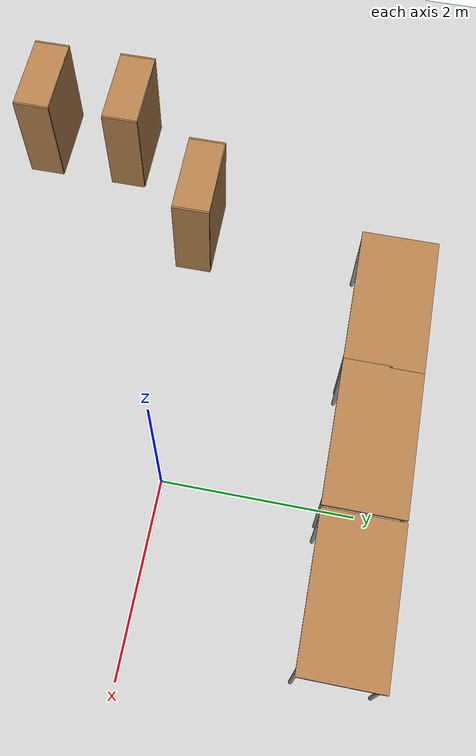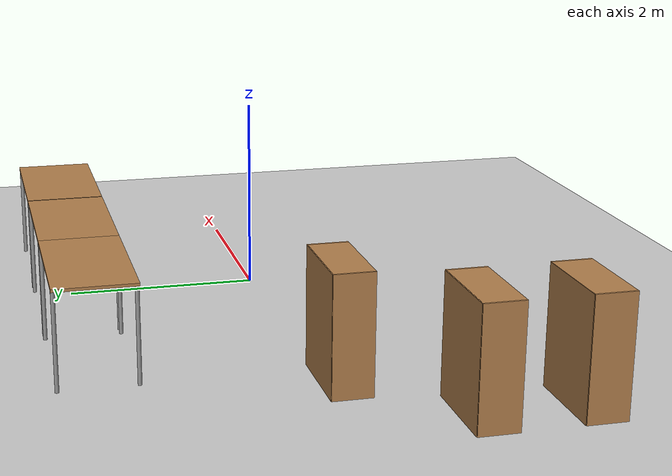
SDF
<sdf version="1.4">
 <world name="default">
  <model name="ground_plane">
   <static>1</static>
   <link name="link">
    <collision name="collision">
     <geometry><plane><normal>0 0 1</normal><size>100 100</size></plane></geometry>
     <surface><friction><ode><mu>100</mu><mu2>50</mu2></ode></friction></surface>
    </collision>
    <visual name="visual">
     <cast_shadows>0</cast_shadows>
     <geometry><plane><normal>0 0 1</normal><size>100 100</size></plane></geometry>
     <material>
      <script><uri>file://media/materials/scripts/gazebo.material</uri><name>Gazebo/Grey</name></script>
     </material>
    </visual>
    <velocity_decay><linear>0</linear><angular>0</angular></velocity_decay>
   </link>
  </model>
  <light name="sun" type="directional">
   <pose>0 0 10 0 -0 0</pose>
   <diffuse>0.8 0.8 0.8 1</diffuse>
   <specular>0.2 0.2 0.2 1</specular>
   <attenuation>
    <range>1000</range>
    <constant>0.9</constant>
    <linear>0.01</linear>
    <quadratic>0.001</quadratic>
   </attenuation>
   <direction>-0.5 0.1 -0.9</direction>
  </light>
  <physics type="ode">
   <max_step_size>0.001</max_step_size>
   <real_time_factor>1</real_time_factor>
   <real_time_update_rate>1000</real_time_update_rate>
   <gravity>0 0 -9.8</gravity>
  </physics>
  <scene><ambient>0.4 0.4 0.4 1</ambient><background>0.7 0.7 0.7 1</background><shadows>1</shadows></scene>
  <spherical_coordinates>
   <surface_model>EARTH_WGS84</surface_model>
   <latitude_deg>0</latitude_deg>
   <longitude_deg>0</longitude_deg>
   <elevation>0</elevation>
   <heading_deg>0</heading_deg>
  </spherical_coordinates>
  <model name="table">
   <static>1</static>
   <link name="link">
    <collision name="surface">
     <pose>0 0 1 0 -0 0</pose>
     <geometry><box><size>1.5 0.8 0.03</size></box></geometry>
     <surface><friction><ode><mu>0.6</mu><mu2>0.6</mu2></ode></friction></surface>
    </collision>
    <visual name="visual1">
     <pose>0 0 1 0 -0 0</pose>
     <geometry><box><size>1.5 0.8 0.03</size></box></geometry>
     <material>
      <script><uri>file://media/materials/scripts/gazebo.material</uri><name>Gazebo/Wood</name></script>
     </material>
    </visual>
    <collision name="front_left_leg">
     <pose>0.68 0.38 0.5 0 -0 0</pose>
     <geometry><cylinder><radius>0.02</radius><length>1</length></cylinder></geometry>
    </collision>
    <visual name="front_left_leg">
     <pose>0.68 0.38 0.5 0 -0 0</pose>
     <geometry><cylinder><radius>0.02</radius><length>1</length></cylinder></geometry>
     <material>
      <script><uri>file://media/materials/scripts/gazebo.material</uri><name>Gazebo/Grey</name></script>
     </material>
    </visual>
    <collision name="front_right_leg">
     <pose>0.68 -0.38 0.5 0 -0 0</pose>
     <geometry><cylinder><radius>0.02</radius><length>1</length></cylinder></geometry>
    </collision>
    <visual name="front_right_leg">
     <pose>0.68 -0.38 0.5 0 -0 0</pose>
     <geometry><cylinder><radius>0.02</radius><length>1</length></cylinder></geometry>
     <material>
      <script><uri>file://media/materials/scripts/gazebo.material</uri><name>Gazebo/Grey</name></script>
     </material>
    </visual>
    <collision name="back_right_leg">
     <pose>-0.68 -0.38 0.5 0 -0 0</pose>
     <geometry><cylinder><radius>0.02</radius><length>1</length></cylinder></geometry>
    </collision>
    <visual name="back_right_leg">
     <pose>-0.68 -0.38 0.5 0 -0 0</pose>
     <geometry><cylinder><radius>0.02</radius><length>1</length></cylinder></geometry>
     <material>
      <script><uri>file://media/materials/scripts/gazebo.material</uri><name>Gazebo/Grey</name></script>
     </material>
    </visual>
    <collision name="back_left_leg">
     <pose>-0.68 0.38 0.5 0 -0 0</pose>
     <geometry><cylinder><radius>0.02</radius><length>1</length></cylinder></geometry>
    </collision>
    <visual name="back_left_leg">
     <pose>-0.68 0.38 0.5 0 -0 0</pose>
     <geometry><cylinder><radius>0.02</radius><length>1</length></cylinder></geometry>
     <material>
      <script><uri>file://media/materials/scripts/gazebo.material</uri><name>Gazebo/Grey</name></script>
     </material>
    </visual>
    <velocity_decay><linear>0</linear><angular>0</angular></velocity_decay>
   </link>
   <pose>-2 2 0 0 -0 0</pose>
  </model>
  <model name="table_0">
   <static>1</static>
   <link name="link">
    <collision name="surface">
     <pose>0 0 1 0 -0 0</pose>
     <geometry><box><size>1.5 0.8 0.03</size></box></geometry>
     <surface><friction><ode><mu>0.6</mu><mu2>0.6</mu2></ode></friction></surface>
    </collision>
    <visual name="visual1">
     <pose>0 0 1 0 -0 0</pose>
     <geometry><box><size>1.5 0.8 0.03</size></box></geometry>
     <material>
      <script><uri>file://media/materials/scripts/gazebo.material</uri><name>Gazebo/Wood</name></script>
     </material>
    </visual>
    <collision name="front_left_leg">
     <pose>0.68 0.38 0.5 0 -0 0</pose>
     <geometry><cylinder><radius>0.02</radius><length>1</length></cylinder></geometry>
    </collision>
    <visual name="front_left_leg">
     <pose>0.68 0.38 0.5 0 -0 0</pose>
     <geometry><cylinder><radius>0.02</radius><length>1</length></cylinder></geometry>
     <material>
      <script><uri>file://media/materials/scripts/gazebo.material</uri><name>Gazebo/Grey</name></script>
     </material>
    </visual>
    <collision name="front_right_leg">
     <pose>0.68 -0.38 0.5 0 -0 0</pose>
     <geometry><cylinder><radius>0.02</radius><length>1</length></cylinder></geometry>
    </collision>
    <visual name="front_right_leg">
     <pose>0.68 -0.38 0.5 0 -0 0</pose>
     <geometry><cylinder><radius>0.02</radius><length>1</length></cylinder></geometry>
     <material>
      <script><uri>file://media/materials/scripts/gazebo.material</uri><name>Gazebo/Grey</name></script>
     </material>
    </visual>
    <collision name="back_right_leg">
     <pose>-0.68 -0.38 0.5 0 -0 0</pose>
     <geometry><cylinder><radius>0.02</radius><length>1</length></cylinder></geometry>
    </collision>
    <visual name="back_right_leg">
     <pose>-0.68 -0.38 0.5 0 -0 0</pose>
     <geometry><cylinder><radius>0.02</radius><length>1</length></cylinder></geometry>
     <material>
      <script><uri>file://media/materials/scripts/gazebo.material</uri><name>Gazebo/Grey</name></script>
     </material>
    </visual>
    <collision name="back_left_leg">
     <pose>-0.68 0.38 0.5 0 -0 0</pose>
     <geometry><cylinder><radius>0.02</radius><length>1</length></cylinder></geometry>
    </collision>
    <visual name="back_left_leg">
     <pose>-0.68 0.38 0.5 0 -0 0</pose>
     <geometry><cylinder><radius>0.02</radius><length>1</length></cylinder></geometry>
     <material>
      <script><uri>file://media/materials/scripts/gazebo.material</uri><name>Gazebo/Grey</name></script>
     </material>
    </visual>
    <velocity_decay><linear>0</linear><angular>0</angular></velocity_decay>
   </link>
   <pose>-0.518792 2 0 0 -0 0</pose>
  </model>
  <model name="table_1">
   <static>1</static>
   <link name="link">
    <collision name="surface">
     <pose>0 0 1 0 -0 0</pose>
     <geometry><box><size>1.5 0.8 0.03</size></box></geometry>
     <surface><friction><ode><mu>0.6</mu><mu2>0.6</mu2></ode></friction></surface>
    </collision>
    <visual name="visual1">
     <pose>0 0 1 0 -0 0</pose>
     <geometry><box><size>1.5 0.8 0.03</size></box></geometry>
     <material>
      <script><uri>file://media/materials/scripts/gazebo.material</uri><name>Gazebo/Wood</name></script>
     </material>
    </visual>
    <collision name="front_left_leg">
     <pose>0.68 0.38 0.5 0 -0 0</pose>
     <geometry><cylinder><radius>0.02</radius><length>1</length></cylinder></geometry>
    </collision>
    <visual name="front_left_leg">
     <pose>0.68 0.38 0.5 0 -0 0</pose>
     <geometry><cylinder><radius>0.02</radius><length>1</length></cylinder></geometry>
     <material>
      <script><uri>file://media/materials/scripts/gazebo.material</uri><name>Gazebo/Grey</name></script>
     </material>
    </visual>
    <collision name="front_right_leg">
     <pose>0.68 -0.38 0.5 0 -0 0</pose>
     <geometry><cylinder><radius>0.02</radius><length>1</length></cylinder></geometry>
    </collision>
    <visual name="front_right_leg">
     <pose>0.68 -0.38 0.5 0 -0 0</pose>
     <geometry><cylinder><radius>0.02</radius><length>1</length></cylinder></geometry>
     <material>
      <script><uri>file://media/materials/scripts/gazebo.material</uri><name>Gazebo/Grey</name></script>
     </material>
    </visual>
    <collision name="back_right_leg">
     <pose>-0.68 -0.38 0.5 0 -0 0</pose>
     <geometry><cylinder><radius>0.02</radius><length>1</length></cylinder></geometry>
    </collision>
    <visual name="back_right_leg">
     <pose>-0.68 -0.38 0.5 0 -0 0</pose>
     <geometry><cylinder><radius>0.02</radius><length>1</length></cylinder></geometry>
     <material>
      <script><uri>file://media/materials/scripts/gazebo.material</uri><name>Gazebo/Grey</name></script>
     </material>
    </visual>
    <collision name="back_left_leg">
     <pose>-0.68 0.38 0.5 0 -0 0</pose>
     <geometry><cylinder><radius>0.02</radius><length>1</length></cylinder></geometry>
    </collision>
    <visual name="back_left_leg">
     <pose>-0.68 0.38 0.5 0 -0 0</pose>
     <geometry><cylinder><radius>0.02</radius><length>1</length></cylinder></geometry>
     <material>
      <script><uri>file://media/materials/scripts/gazebo.material</uri><name>Gazebo/Grey</name></script>
     </material>
    </visual>
    <velocity_decay><linear>0</linear><angular>0</angular></velocity_decay>
   </link>
   <pose>1 2 0 0 -0 0</pose>
  </model>
  <model name="bookshelf">
   <static>1</static>
   <link name="link">
    <inertial><mass>1</mass></inertial>
    <collision name="back">
     <pose>0 0.005 0.6 0 -0 0</pose>
     <geometry><box><size>0.9 0.01 1.2</size></box></geometry>
    </collision>
    <visual name="visual1">
     <pose>0 0.005 0.6 0 -0 0</pose>
     <geometry><box><size>0.9 0.01 1.2</size></box></geometry>
     <material>
      <script><uri>file://media/materials/scripts/gazebo.material</uri><name>Gazebo/Wood</name></script>
     </material>
    </visual>
    <collision name="left_side">
     <pose>0.45 -0.195 0.6 0 -0 0</pose>
     <geometry><box><size>0.02 0.4 1.2</size></box></geometry>
    </collision>
    <visual name="visual2">
     <pose>0.45 -0.195 0.6 0 -0 0</pose>
     <geometry><box><size>0.02 0.4 1.2</size></box></geometry>
     <material>
      <script><uri>file://media/materials/scripts/gazebo.material</uri><name>Gazebo/Wood</name></script>
     </material>
    </visual>
    <collision name="right_side">
     <pose>-0.45 -0.195 0.6 0 -0 0</pose>
     <geometry><box><size>0.02 0.4 1.2</size></box></geometry>
    </collision>
    <visual name="visual3">
     <pose>-0.45 -0.195 0.6 0 -0 0</pose>
     <geometry><box><size>0.02 0.4 1.2</size></box></geometry>
     <material>
      <script><uri>file://media/materials/scripts/gazebo.material</uri><name>Gazebo/Wood</name></script>
     </material>
    </visual>
    <collision name="bottom">
     <pose>0 -0.195 0.03 0 -0 0</pose>
     <geometry><box><size>0.88 0.4 0.06</size></box></geometry>
    </collision>
    <visual name="visual4">
     <pose>0 -0.195 0.03 0 -0 0</pose>
     <geometry><box><size>0.88 0.4 0.06</size></box></geometry>
     <material>
      <script><uri>file://media/materials/scripts/gazebo.material</uri><name>Gazebo/Wood</name></script>
     </material>
    </visual>
    <collision name="top">
     <pose>0 -0.195 1.19 0 -0 0</pose>
     <geometry><box><size>0.88 0.4 0.02</size></box></geometry>
    </collision>
    <visual name="visual5">
     <pose>0 -0.195 1.19 0 -0 0</pose>
     <geometry><box><size>0.88 0.4 0.02</size></box></geometry>
     <material>
      <script><uri>file://media/materials/scripts/gazebo.material</uri><name>Gazebo/Wood</name></script>
     </material>
    </visual>
    <collision name="low_shelf">
     <pose>0 -0.195 0.43 0 -0 0</pose>
     <geometry><box><size>0.88 0.4 0.02</size></box></geometry>
    </collision>
    <visual name="visual6">
     <pose>0 -0.195 0.43 0 -0 0</pose>
     <geometry><box><size>0.88 0.4 0.02</size></box></geometry>
     <material>
      <script><uri>file://media/materials/scripts/gazebo.material</uri><name>Gazebo/Wood</name></script>
     </material>
    </visual>
    <collision name="high_shelf">
     <pose>0 -0.195 0.8 0 -0 0</pose>
     <geometry><box><size>0.88 0.4 0.02</size></box></geometry>
    </collision>
    <visual name="visual7">
     <pose>0 -0.195 0.8 0 -0 0</pose>
     <geometry><box><size>0.88 0.4 0.02</size></box></geometry>
     <material>
      <script><uri>file://media/materials/scripts/gazebo.material</uri><name>Gazebo/Wood</name></script>
     </material>
    </visual>
    <velocity_decay><linear>0</linear><angular>0</angular></velocity_decay>
   </link>
   <pose>-3 0 0 0 -0 0</pose>
  </model>
  <model name="bookshelf_0">
   <static>1</static>
   <link name="link">
    <inertial><mass>1</mass></inertial>
    <collision name="back">
     <pose>0 0.005 0.6 0 -0 0</pose>
     <geometry><box><size>0.9 0.01 1.2</size></box></geometry>
    </collision>
    <visual name="visual1">
     <pose>0 0.005 0.6 0 -0 0</pose>
     <geometry><box><size>0.9 0.01 1.2</size></box></geometry>
     <material>
      <script><uri>file://media/materials/scripts/gazebo.material</uri><name>Gazebo/Wood</name></script>
     </material>
    </visual>
    <collision name="left_side">
     <pose>0.45 -0.195 0.6 0 -0 0</pose>
     <geometry><box><size>0.02 0.4 1.2</size></box></geometry>
    </collision>
    <visual name="visual2">
     <pose>0.45 -0.195 0.6 0 -0 0</pose>
     <geometry><box><size>0.02 0.4 1.2</size></box></geometry>
     <material>
      <script><uri>file://media/materials/scripts/gazebo.material</uri><name>Gazebo/Wood</name></script>
     </material>
    </visual>
    <collision name="right_side">
     <pose>-0.45 -0.195 0.6 0 -0 0</pose>
     <geometry><box><size>0.02 0.4 1.2</size></box></geometry>
    </collision>
    <visual name="visual3">
     <pose>-0.45 -0.195 0.6 0 -0 0</pose>
     <geometry><box><size>0.02 0.4 1.2</size></box></geometry>
     <material>
      <script><uri>file://media/materials/scripts/gazebo.material</uri><name>Gazebo/Wood</name></script>
     </material>
    </visual>
    <collision name="bottom">
     <pose>0 -0.195 0.03 0 -0 0</pose>
     <geometry><box><size>0.88 0.4 0.06</size></box></geometry>
    </collision>
    <visual name="visual4">
     <pose>0 -0.195 0.03 0 -0 0</pose>
     <geometry><box><size>0.88 0.4 0.06</size></box></geometry>
     <material>
      <script><uri>file://media/materials/scripts/gazebo.material</uri><name>Gazebo/Wood</name></script>
     </material>
    </visual>
    <collision name="top">
     <pose>0 -0.195 1.19 0 -0 0</pose>
     <geometry><box><size>0.88 0.4 0.02</size></box></geometry>
    </collision>
    <visual name="visual5">
     <pose>0 -0.195 1.19 0 -0 0</pose>
     <geometry><box><size>0.88 0.4 0.02</size></box></geometry>
     <material>
      <script><uri>file://media/materials/scripts/gazebo.material</uri><name>Gazebo/Wood</name></script>
     </material>
    </visual>
    <collision name="low_shelf">
     <pose>0 -0.195 0.43 0 -0 0</pose>
     <geometry><box><size>0.88 0.4 0.02</size></box></geometry>
    </collision>
    <visual name="visual6">
     <pose>0 -0.195 0.43 0 -0 0</pose>
     <geometry><box><size>0.88 0.4 0.02</size></box></geometry>
     <material>
      <script><uri>file://media/materials/scripts/gazebo.material</uri><name>Gazebo/Wood</name></script>
     </material>
    </visual>
    <collision name="high_shelf">
     <pose>0 -0.195 0.8 0 -0 0</pose>
     <geometry><box><size>0.88 0.4 0.02</size></box></geometry>
    </collision>
    <visual name="visual7">
     <pose>0 -0.195 0.8 0 -0 0</pose>
     <geometry><box><size>0.88 0.4 0.02</size></box></geometry>
     <material>
      <script><uri>file://media/materials/scripts/gazebo.material</uri><name>Gazebo/Wood</name></script>
     </material>
    </visual>
    <velocity_decay><linear>0</linear><angular>0</angular></velocity_decay>
   </link>
   <pose>-4 -1 0 0 -0 0</pose>
  </model>
  <model name="bookshelf_1">
   <static>1</static>
   <link name="link">
    <inertial><mass>1</mass></inertial>
    <collision name="back">
     <pose>0 0.005 0.6 0 -0 0</pose>
     <geometry><box><size>0.9 0.01 1.2</size></box></geometry>
    </collision>
    <visual name="visual1">
     <pose>0 0.005 0.6 0 -0 0</pose>
     <geometry><box><size>0.9 0.01 1.2</size></box></geometry>
     <material>
      <script><uri>file://media/materials/scripts/gazebo.material</uri><name>Gazebo/Wood</name></script>
     </material>
    </visual>
    <collision name="left_side">
     <pose>0.45 -0.195 0.6 0 -0 0</pose>
     <geometry><box><size>0.02 0.4 1.2</size></box></geometry>
    </collision>
    <visual name="visual2">
     <pose>0.45 -0.195 0.6 0 -0 0</pose>
     <geometry><box><size>0.02 0.4 1.2</size></box></geometry>
     <material>
      <script><uri>file://media/materials/scripts/gazebo.material</uri><name>Gazebo/Wood</name></script>
     </material>
    </visual>
    <collision name="right_side">
     <pose>-0.45 -0.195 0.6 0 -0 0</pose>
     <geometry><box><size>0.02 0.4 1.2</size></box></geometry>
    </collision>
    <visual name="visual3">
     <pose>-0.45 -0.195 0.6 0 -0 0</pose>
     <geometry><box><size>0.02 0.4 1.2</size></box></geometry>
     <material>
      <script><uri>file://media/materials/scripts/gazebo.material</uri><name>Gazebo/Wood</name></script>
     </material>
    </visual>
    <collision name="bottom">
     <pose>0 -0.195 0.03 0 -0 0</pose>
     <geometry><box><size>0.88 0.4 0.06</size></box></geometry>
    </collision>
    <visual name="visual4">
     <pose>0 -0.195 0.03 0 -0 0</pose>
     <geometry><box><size>0.88 0.4 0.06</size></box></geometry>
     <material>
      <script><uri>file://media/materials/scripts/gazebo.material</uri><name>Gazebo/Wood</name></script>
     </material>
    </visual>
    <collision name="top">
     <pose>0 -0.195 1.19 0 -0 0</pose>
     <geometry><box><size>0.88 0.4 0.02</size></box></geometry>
    </collision>
    <visual name="visual5">
     <pose>0 -0.195 1.19 0 -0 0</pose>
     <geometry><box><size>0.88 0.4 0.02</size></box></geometry>
     <material>
      <script><uri>file://media/materials/scripts/gazebo.material</uri><name>Gazebo/Wood</name></script>
     </material>
    </visual>
    <collision name="low_shelf">
     <pose>0 -0.195 0.43 0 -0 0</pose>
     <geometry><box><size>0.88 0.4 0.02</size></box></geometry>
    </collision>
    <visual name="visual6">
     <pose>0 -0.195 0.43 0 -0 0</pose>
     <geometry><box><size>0.88 0.4 0.02</size></box></geometry>
     <material>
      <script><uri>file://media/materials/scripts/gazebo.material</uri><name>Gazebo/Wood</name></script>
     </material>
    </visual>
    <collision name="high_shelf">
     <pose>0 -0.195 0.8 0 -0 0</pose>
     <geometry><box><size>0.88 0.4 0.02</size></box></geometry>
    </collision>
    <visual name="visual7">
     <pose>0 -0.195 0.8 0 -0 0</pose>
     <geometry><box><size>0.88 0.4 0.02</size></box></geometry>
     <material>
      <script><uri>file://media/materials/scripts/gazebo.material</uri><name>Gazebo/Wood</name></script>
     </material>
    </visual>
    <velocity_decay><linear>0</linear><angular>0</angular></velocity_decay>
   </link>
   <pose>-4 -2 0 0 -0 0</pose>
  </model>
 </world>
</sdf>
